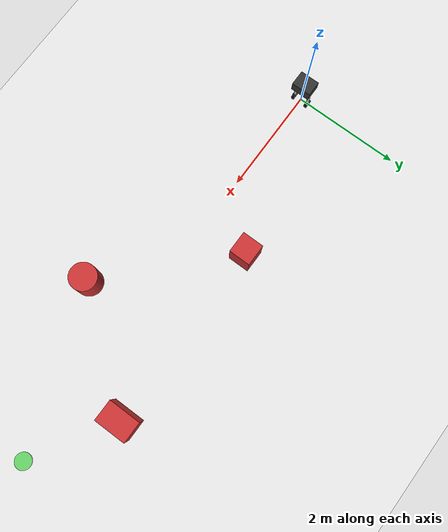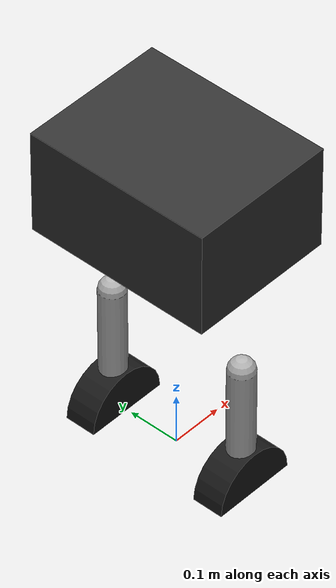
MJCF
<mujoco model="limx_tron1_obstacle_nav">
  <compiler angle="degree" coordinate="local" inertiafromgeom="true"/>
  <option timestep="0.002" gravity="0 0 -9.81" integrator="implicitfast"/>

  <default>
    <joint damping="2.0" armature="0.02"/>
    <geom contype="1" conaffinity="1" friction="1.0 0.2 0.1" rgba="0.7 0.7 0.7 1"/>
    <position kp="60" ctrllimited="true"/>
  </default>

  <worldbody>
    <light diffuse=".6 .6 .6" pos="0 0 5" dir="0 0 -1"/>
    <geom name="floor" type="plane" size="12 12 0.1" rgba="0.9 0.9 0.9 1"/>

    <body name="tron1_slider_x" pos="0 0 0">
      <inertial pos="0 0 0" mass="0.001" diaginertia="1e-6 1e-6 1e-6"/>
      <joint name="base_x" type="slide" axis="1 0 0" damping="5"/>
      <body name="tron1_slider_y">
        <inertial pos="0 0 0" mass="0.001" diaginertia="1e-6 1e-6 1e-6"/>
        <joint name="base_y" type="slide" axis="0 1 0" damping="5"/>
        <body name="tron1_base" pos="0 0 0.55">
          <joint name="base_yaw" type="hinge" axis="0 0 1" damping="5"/>
          <inertial pos="0 0 0" mass="14.0" diaginertia="0.20 0.35 0.30"/>
          <geom name="base_geom" type="box" size="0.14 0.18 0.10" rgba="0.2 0.2 0.2 1"/>

          <!-- Left leg: hip -> knee -> wheel -->
          <body name="l_hip" pos="0 0.14 -0.05">
            <joint name="l_hip_joint" type="hinge" axis="0 1 0" range="-45 45"/>
            <geom type="cylinder" size="0.03 0.04" rgba="0.3 0.3 0.3 1" contype="0" conaffinity="0"/>
            <body name="l_knee" pos="0 0 -0.25">
              <joint name="l_knee_joint" type="hinge" axis="0 1 0" range="-90 10"/>
              <geom type="capsule" fromto="0 0 0 0 0 -0.25" size="0.025" contype="0" conaffinity="0"/>
              <body name="l_wheel" pos="0 0 -0.25">
                <joint name="l_wheel_joint" type="hinge" axis="0 1 0"/>
                <geom type="cylinder" size="0.08 0.03" rgba="0.1 0.1 0.1 1" euler="90 0 0"/>
              </body>
            </body>
          </body>

          <!-- Right leg: hip -> knee -> wheel -->
          <body name="r_hip" pos="0 -0.14 -0.05">
            <joint name="r_hip_joint" type="hinge" axis="0 1 0" range="-45 45"/>
            <geom type="cylinder" size="0.03 0.04" rgba="0.3 0.3 0.3 1" contype="0" conaffinity="0"/>
            <body name="r_knee" pos="0 0 -0.25">
              <joint name="r_knee_joint" type="hinge" axis="0 1 0" range="-90 10"/>
              <geom type="capsule" fromto="0 0 0 0 0 -0.25" size="0.025" contype="0" conaffinity="0"/>
              <body name="r_wheel" pos="0 0 -0.25">
                <joint name="r_wheel_joint" type="hinge" axis="0 1 0"/>
                <geom type="cylinder" size="0.08 0.03" rgba="0.1 0.1 0.1 1" euler="90 0 0"/>
              </body>
            </body>
          </body>
        </body>
      </body>
    </body>

    <!-- Obstacles for obstacle-avoidance navigation -->
    <body name="obstacle_1" pos="3.0 0.9 0.3">
      <geom type="box" size="0.2 0.2 0.3" rgba="0.8 0.2 0.2 1"/>
    </body>
    <body name="obstacle_2" pos="5.0 -1.0 0.3">
      <geom type="cylinder" size="0.25 0.3" rgba="0.8 0.2 0.2 1"/>
    </body>
    <body name="obstacle_3" pos="6.5 0.9 0.3">
      <geom type="box" size="0.2 0.3 0.3" rgba="0.8 0.2 0.2 1"/>
    </body>

    <!-- Goal marker -->
    <body name="goal_marker" pos="8.0 0.0 0.05">
      <geom type="cylinder" size="0.15 0.02" rgba="0.1 0.8 0.1 0.6" contype="0" conaffinity="0"/>
    </body>
  </worldbody>

  <actuator>
    <velocity name="base_vx"  joint="base_x"   kv="200" ctrlrange="-1.5 1.5"/>
    <velocity name="base_vy"  joint="base_y"   kv="200" ctrlrange="-1.5 1.5"/>
    <velocity name="base_wz"  joint="base_yaw" kv="80"  ctrlrange="-1.0 1.0"/>
    <position name="l_hip"    joint="l_hip_joint"    ctrlrange="-45 45"/>
    <position name="l_knee"   joint="l_knee_joint"   ctrlrange="-90 10"/>
    <velocity name="l_wheel"  joint="l_wheel_joint"  kv="50" ctrlrange="-10 10"/>
    <position name="r_hip"    joint="r_hip_joint"    ctrlrange="-45 45"/>
    <position name="r_knee"   joint="r_knee_joint"   ctrlrange="-90 10"/>
    <velocity name="r_wheel"  joint="r_wheel_joint"  kv="50" ctrlrange="-10 10"/>
  </actuator>
</mujoco>
